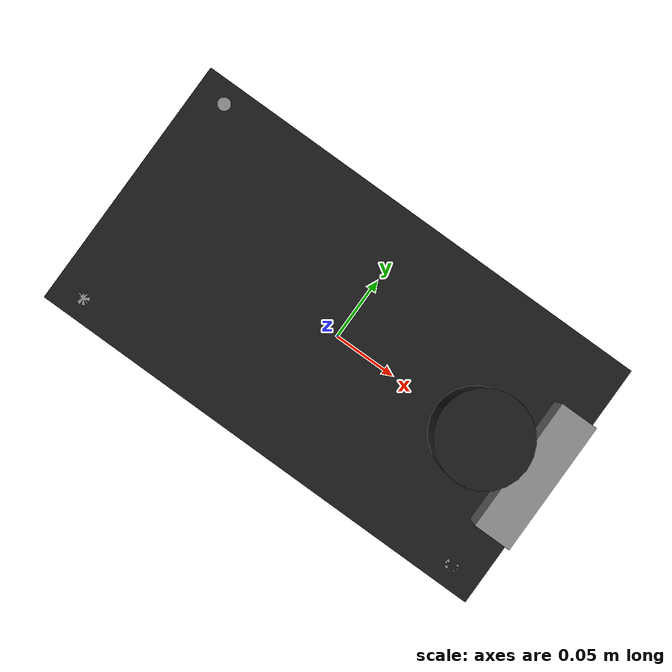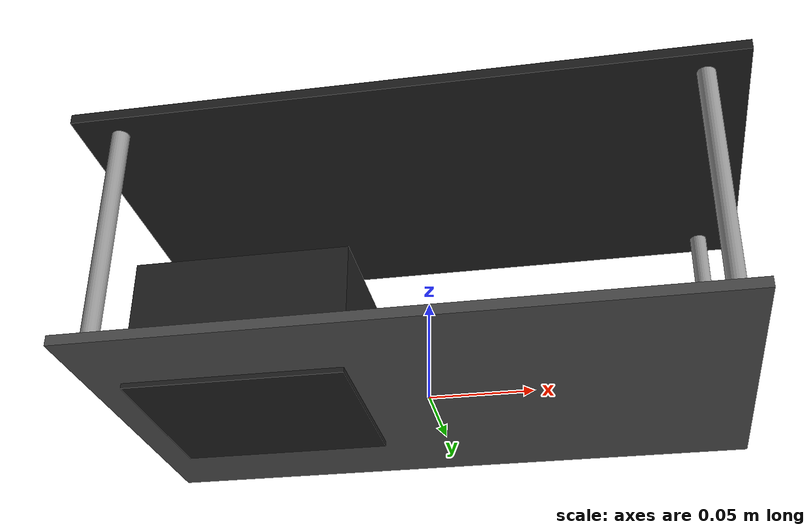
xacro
<?xml version="1.0" ?>
<robot xmlns:xacro="http://www.ros.org/wiki/xacro">

  <!-- If enabled, generate the SLAM_PACK payload -->
  <xacro:include filename="$(find rr_openrover_description)/urdf/accessories/SLAM_pack.urdf.xacro" />
  <xacro:if value="$(optenv SLAM_PACK 0)">

    <joint name="slam_pack_mount_point" type="fixed">
      <origin xyz="0.025 0 0.185"
              rpy="0 0 0" />
      <parent link="chassis_link" />
      <child link="slam_pack_mount_point" />
    </joint>
  </xacro:if>

</robot>

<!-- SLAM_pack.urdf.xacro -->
<robot xmlns:xacro="http://www.ros.org/wiki/xacro">
    <link name="slam_pack_mount_point">
      <visual>
        <origin xyz="0 0 0" rpy="0 0 0" />
        <geometry>
          <box size="0.305 0.178 0.005"/>
        </geometry>
        <material name="dark_grey" />
      </visual>
    </link>

  <joint name="bottom_plate_link_joint" type="fixed">
    <parent link="slam_pack_mount_point"/>
    <child link="bottom_plate_link"/>
    <origin xyz="0 0 0" rpy="0 0 0"/>
  </joint>
  <link name="bottom_plate_link"/>

  <joint name="xavier_link_joint" type="fixed">
    <parent link="bottom_plate_link"/>
    <child link="xavier_link"/>
    <origin xyz="-0.0832 0 0.0275" rpy="0 0 0"/>
  </joint>
  <link name="xavier_link">
    <visual>
      <origin xyz="0 0 0" rpy="0 0 0"/>
      <geometry>
        <box size="0.105 0.092 0.065"/>
      </geometry>
      <material name="light_black"/>
    </visual>
    <inertial>
      <origin xyz="0 0 0" />
      <mass value="0.64" />
      <inertia ixx="8.634e-4"
               ixy="0.0" iyy="7.905e-4"
               ixz="0.0" iyz="0.0" izz="1.387e-3" />
    </inertial>
  </link>

  <joint name="top_plate_link_joint" type="fixed">
    <parent link="bottom_plate_link"/>
    <child link="top_plate_link"/>
    <origin xyz="0 0 0.12" rpy="0 0 0"/>
  </joint>
  <link name="top_plate_link">
    <visual>
      <origin xyz="0 0 0" rpy="0 0 0"/>
      <geometry>
        <box size="0.32 0.175 0.005"/>
      </geometry>
      <material name="black"/>
    </visual>
    <inertial>
      <origin xyz="0 0 0" />
      <mass value="0.65" />
      <inertia ixx="3.496e-3"
               ixy="0.0" iyy="7.864e-3"
               ixz="0.0" iyz="0.0" izz="1.136e-2" />
    </inertial>
  </link>

  <link name="camera_link">
    <visual>
      <origin xyz="0 0 0" rpy="0 0 0"/>
      <geometry>
        <box size="0.025 0.089 0.025"/>
      </geometry>
      <material name="grey"/>
    </visual>
  </link>

  <joint name="camera_link_joint" type="fixed">
    <parent link="top_plate_link"/>
    <child link="camera_link"/>
    <origin xyz="0.145 0 0.0125" rpy="0 0 0"/>
  </joint>

  <link name="depth_image_link"/>

  <joint name="depth_image_link_joint" type="fixed">
    <parent link="camera_link"/>
    <child link="depth_image_link"/>
    <origin xyz="0 0 0" rpy="-${pi /2} 0 -${pi /2}"/>
  </joint>

  <gazebo reference="camera_link">
    <sensor name="gazebo_realsense_435" type="depth">
      <plugin name="gazebo_realsense_435_controller" filename="libgazebo_ros_openni_kinect.so">
        <alwayson>true</alwayson>
        <updaterate>30.0</updaterate>
        <frameName>depth_image_link</frameName>
      </plugin>
    </sensor>
  </gazebo>

  <link name="lidar_link">
    <visual>
      <origin xyz="0 0 0" rpy="0 0 0"/>
      <geometry>
        <cylinder length="0.04" radius="0.03"/>
      </geometry>
      <material name="light_black"/>
    </visual>
    <inertial>
      <origin xyz="0 0 0" />
      <mass value="0.220" />
      <inertia ixx="1.214e-4"
               ixy="0.0" iyy="1.214e-4"
               ixz="0.0" iyz="0.0" izz="1.597e-4" />
    </inertial>
  </link>

  <joint name="lidar_link_joint" type="fixed">
    <parent link="top_plate_link"/>
    <child link="lidar_link"/>
    <origin xyz="0.105 0 0.02" rpy="0 0 3.14159"/>
  </joint>

  <gazebo reference="lidar_link">
    <sensor name="gazebo_lidar" type="ray">
      <update_rate>12.0</update_rate>
      <plugin name="gazebo_lidar" filename="libgazebo_ros_laser.so">
        <topicName>scan</topicName>
        <namespace></namespace>
        <outputType>sensor_msgs/LaserScan</outputType>
        <frameName>lidar_link</frameName>
      </plugin>
      <ray>
        <scan>
          <horizontal>
            <samples>360</samples>
            <resolution>1</resolution>
            <min_angle>-3.14159</min_angle>
            <max_angle>3.14159</max_angle>
          </horizontal>
        </scan>
        <range>
          <min>0.120</min>
          <max>20</max>
          <resolution>0.015</resolution>
        </range>
        <noise>
          <type>gaussian</type>
          <mean>0.0</mean>
          <stddev>0.01</stddev>
        </noise>
      </ray>
    </sensor>
    <material>Gazebo/DarkGrey</material>
  </gazebo>

  <link name="imu_link">
    <visual>
      <origin xyz="0 0 0" rpy="0 0 0"/>
      <geometry>
        <box size="0.01 0.01 0.002"/>
      </geometry>
      <material name="blue"/>
    </visual>
    <inertial>
      <origin xyz="0 0 0" />
      <mass value="0.04" />
      <inertia ixx="3.467e-7"
               ixy="0.0" iyy="3.467e-7"
               ixz="0.0" iyz="0.0" izz="6.667e-7" />
    </inertial>
  </link>

  <joint name="imu_link_joint" type="fixed">
    <parent link="bottom_plate_link"/>
    <child link="imu_link"/>
    <origin xyz="0.1365 0 0.0026" rpy="0 0 0"/>
  </joint>

  <gazebo reference="imu_link">
    <sensor name="gazebo_imu" type="imu">
      <plugin name="gazebo_imu" filename="libgazebo_ros_imu_sensor.so">
        <updateRateHZ>30.0</updateRateHZ>
        <topicName>/imu</topicName>
        <frameName>imu_link</frameName>
      </plugin>
    </sensor>
    <material>Gazebo/Blue</material>
  </gazebo>

  <joint name="standoff_fl_joint" type="fixed">
    <parent link="bottom_plate_link"/>
    <child link="standoff_fl_link"/>
    <origin xyz="0.14 -0.074 0.0025" rpy="0 0 0"/>
  </joint>

  <link name="standoff_fl_link">
    <visual>
      <origin xyz="0 0 0.06" rpy="0 0 0"/>
      <geometry>
        <cylinder length="0.12" radius="0.0043"/>
      </geometry>
      <material name="grey"/>
    </visual>
  </link>

  <joint name="standoff_fr_link_joint" type="fixed">
    <parent link="bottom_plate_link"/>
    <child link="standoff_fr_link"/>
    <origin xyz="0.14 0.074 0.0025" rpy="0 0 0"/>
  </joint>

  <link name="standoff_fr_link">
    <visual>
      <origin xyz="0 0 0.06" rpy="0 0 0"/>
      <geometry>
        <cylinder length="0.12" radius="0.0043"/>
      </geometry>
      <material name="grey"/>
    </visual>
  </link>

  <joint name="standoff_bl_link_joint" type="fixed">
    <parent link="bottom_plate_link"/>
    <child link="standoff_bl_link"/>
    <origin xyz="-0.14 -0.074 0.0025" rpy="0 0 0"/>
  </joint>

  <link name="standoff_bl_link">
    <visual>
      <origin xyz="0 0 0.06" rpy="0 0 0"/>
      <geometry>
        <cylinder length="0.12" radius="0.0043"/>
      </geometry>
      <material name="grey"/>
    </visual>
  </link>

  <joint name="standoff_br_link_joint" type="fixed">
    <parent link="bottom_plate_link"/>
    <child link="standoff_br_link"/>
    <origin xyz="-0.14 0.074 0.0025" rpy="0 0 0"/>
  </joint>

  <link name="standoff_br_link">
    <visual>
      <origin xyz="0 0 0.06" rpy="0 0 0"/>
      <geometry>
        <cylinder length="0.12" radius="0.0043"/>
      </geometry>
      <material name="grey"/>
    </visual>
  </link>

</robot>
